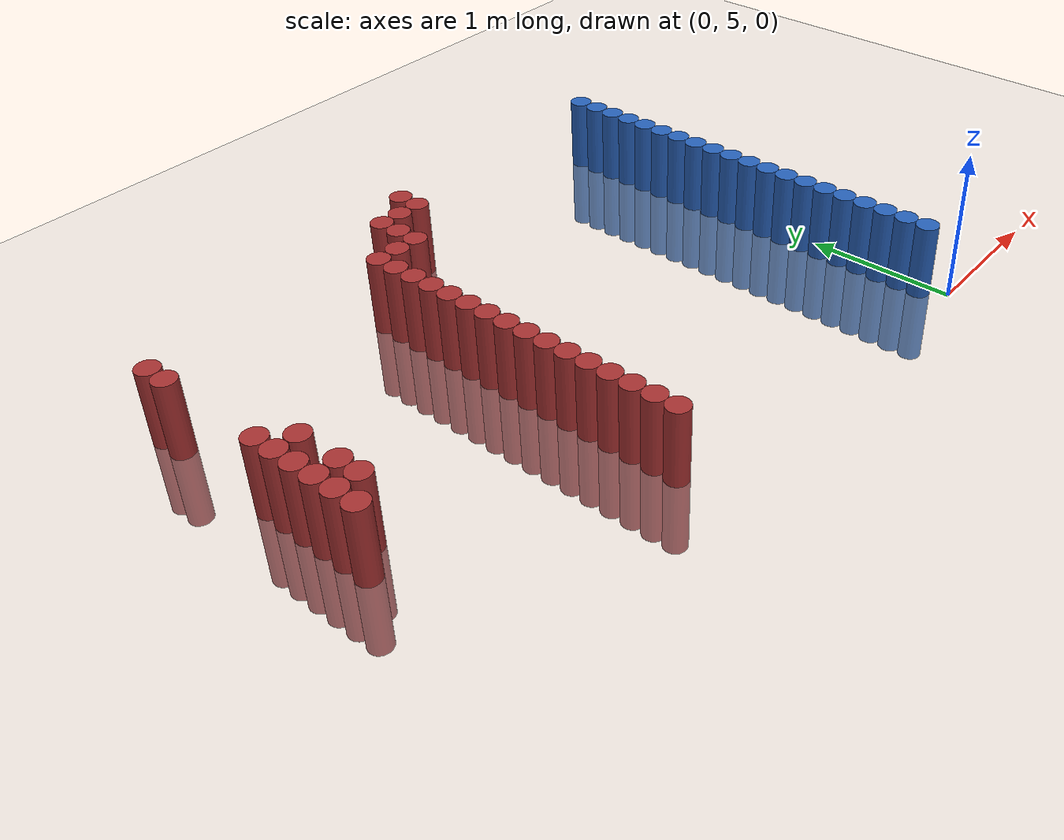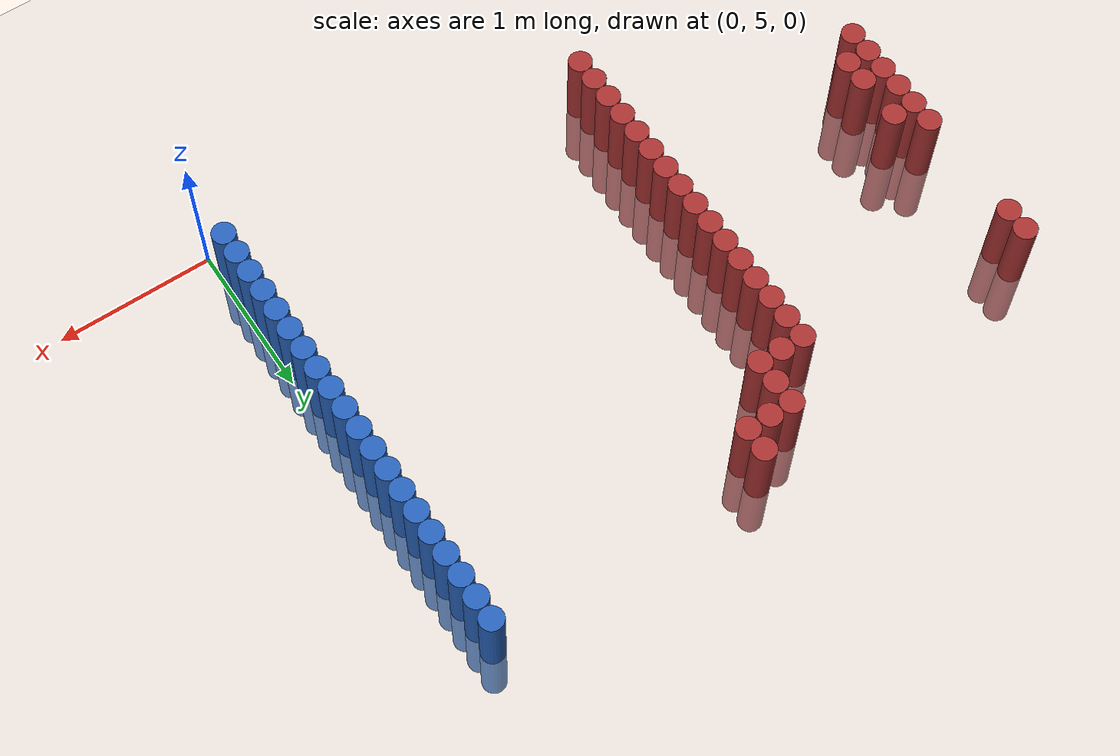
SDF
<sdf version="1.6">
 <world name="default">
  <model name="ground_plane">
   <static>1</static>
   <link name="link">
    <collision name="collision">
     <geometry><plane><normal>0 0 1</normal><size>100 100</size></plane></geometry>
     <surface><friction><ode><mu>100</mu><mu2>50</mu2></ode></friction></surface>
    </collision>
    <visual name="visual">
     <cast_shadows>0</cast_shadows>
     <geometry><plane><normal>0 0 1</normal><size>100 100</size></plane></geometry>
     <material>
      <script><uri>file://media/materials/scripts/gazebo.material</uri><name>Gazebo/Grey</name></script>
     </material>
    </visual>
   </link>
  </model>
  <model name="unit_cylinder_258">
   <static>1</static>
   <pose>-3.975000 6.075000 0.000000 0.000000 0.000000 0.000000</pose>
   <link name="link">
    <inertial>
     <mass>1</mass>
     <inertia><ixx>0.145833</ixx><ixy>0</ixy><ixz>0</ixz><iyy>0.145833</iyy><iyz>0</iyz><izz>0.125</izz></inertia>
    </inertial>
    <collision name="collision">
     <geometry><cylinder><radius>0.075000</radius><length>1</length></cylinder></geometry>
    </collision>
    <visual name="visual">
     <geometry><cylinder><radius>0.075000</radius><length>1</length></cylinder></geometry>
     <material>
      <ambient>0.648000 0.192000 0.192000 1</ambient>
      <diffuse>0.648000 0.192000 0.192000 1</diffuse>
     </material>
     <material>
      <script><name>Gazebo/Grey</name><uri>file://media/materials/scripts/gazebo.material</uri></script>
     </material>
    </visual>
   </link>
  </model>
  <model name="unit_cylinder_259">
   <static>1</static>
   <pose>-3.975000 6.225000 0.000000 0.000000 0.000000 0.000000</pose>
   <link name="link">
    <inertial>
     <mass>1</mass>
     <inertia><ixx>0.145833</ixx><ixy>0</ixy><ixz>0</ixz><iyy>0.145833</iyy><iyz>0</iyz><izz>0.125</izz></inertia>
    </inertial>
    <collision name="collision">
     <geometry><cylinder><radius>0.075000</radius><length>1</length></cylinder></geometry>
    </collision>
    <visual name="visual">
     <geometry><cylinder><radius>0.075000</radius><length>1</length></cylinder></geometry>
     <material>
      <ambient>0.648000 0.192000 0.192000 1</ambient>
      <diffuse>0.648000 0.192000 0.192000 1</diffuse>
     </material>
     <material>
      <script><name>Gazebo/Grey</name><uri>file://media/materials/scripts/gazebo.material</uri></script>
     </material>
    </visual>
   </link>
  </model>
  <model name="unit_cylinder_260">
   <static>1</static>
   <pose>-3.975000 6.375000 0.000000 0.000000 0.000000 0.000000</pose>
   <link name="link">
    <inertial>
     <mass>1</mass>
     <inertia><ixx>0.145833</ixx><ixy>0</ixy><ixz>0</ixz><iyy>0.145833</iyy><iyz>0</iyz><izz>0.125</izz></inertia>
    </inertial>
    <collision name="collision">
     <geometry><cylinder><radius>0.075000</radius><length>1</length></cylinder></geometry>
    </collision>
    <visual name="visual">
     <geometry><cylinder><radius>0.075000</radius><length>1</length></cylinder></geometry>
     <material>
      <ambient>0.648000 0.192000 0.192000 1</ambient>
      <diffuse>0.648000 0.192000 0.192000 1</diffuse>
     </material>
     <material>
      <script><name>Gazebo/Grey</name><uri>file://media/materials/scripts/gazebo.material</uri></script>
     </material>
    </visual>
   </link>
  </model>
  <model name="unit_cylinder_261">
   <static>1</static>
   <pose>-3.975000 6.525000 0.000000 0.000000 0.000000 0.000000</pose>
   <link name="link">
    <inertial>
     <mass>1</mass>
     <inertia><ixx>0.145833</ixx><ixy>0</ixy><ixz>0</ixz><iyy>0.145833</iyy><iyz>0</iyz><izz>0.125</izz></inertia>
    </inertial>
    <collision name="collision">
     <geometry><cylinder><radius>0.075000</radius><length>1</length></cylinder></geometry>
    </collision>
    <visual name="visual">
     <geometry><cylinder><radius>0.075000</radius><length>1</length></cylinder></geometry>
     <material>
      <ambient>0.648000 0.192000 0.192000 1</ambient>
      <diffuse>0.648000 0.192000 0.192000 1</diffuse>
     </material>
     <material>
      <script><name>Gazebo/Grey</name><uri>file://media/materials/scripts/gazebo.material</uri></script>
     </material>
    </visual>
   </link>
  </model>
  <model name="unit_cylinder_262">
   <static>1</static>
   <pose>-3.975000 6.675000 0.000000 0.000000 0.000000 0.000000</pose>
   <link name="link">
    <inertial>
     <mass>1</mass>
     <inertia><ixx>0.145833</ixx><ixy>0</ixy><ixz>0</ixz><iyy>0.145833</iyy><iyz>0</iyz><izz>0.125</izz></inertia>
    </inertial>
    <collision name="collision">
     <geometry><cylinder><radius>0.075000</radius><length>1</length></cylinder></geometry>
    </collision>
    <visual name="visual">
     <geometry><cylinder><radius>0.075000</radius><length>1</length></cylinder></geometry>
     <material>
      <ambient>0.648000 0.192000 0.192000 1</ambient>
      <diffuse>0.648000 0.192000 0.192000 1</diffuse>
     </material>
     <material>
      <script><name>Gazebo/Grey</name><uri>file://media/materials/scripts/gazebo.material</uri></script>
     </material>
    </visual>
   </link>
  </model>
  <model name="unit_cylinder_263">
   <static>1</static>
   <pose>-3.975000 6.825000 0.000000 0.000000 0.000000 0.000000</pose>
   <link name="link">
    <inertial>
     <mass>1</mass>
     <inertia><ixx>0.145833</ixx><ixy>0</ixy><ixz>0</ixz><iyy>0.145833</iyy><iyz>0</iyz><izz>0.125</izz></inertia>
    </inertial>
    <collision name="collision">
     <geometry><cylinder><radius>0.075000</radius><length>1</length></cylinder></geometry>
    </collision>
    <visual name="visual">
     <geometry><cylinder><radius>0.075000</radius><length>1</length></cylinder></geometry>
     <material>
      <ambient>0.648000 0.192000 0.192000 1</ambient>
      <diffuse>0.648000 0.192000 0.192000 1</diffuse>
     </material>
     <material>
      <script><name>Gazebo/Grey</name><uri>file://media/materials/scripts/gazebo.material</uri></script>
     </material>
    </visual>
   </link>
  </model>
  <model name="unit_cylinder_264">
   <static>1</static>
   <pose>-3.975000 7.575000 0.000000 0.000000 0.000000 0.000000</pose>
   <link name="link">
    <inertial>
     <mass>1</mass>
     <inertia><ixx>0.145833</ixx><ixy>0</ixy><ixz>0</ixz><iyy>0.145833</iyy><iyz>0</iyz><izz>0.125</izz></inertia>
    </inertial>
    <collision name="collision">
     <geometry><cylinder><radius>0.075000</radius><length>1</length></cylinder></geometry>
    </collision>
    <visual name="visual">
     <geometry><cylinder><radius>0.075000</radius><length>1</length></cylinder></geometry>
     <material>
      <ambient>0.648000 0.192000 0.192000 1</ambient>
      <diffuse>0.648000 0.192000 0.192000 1</diffuse>
     </material>
     <material>
      <script><name>Gazebo/Grey</name><uri>file://media/materials/scripts/gazebo.material</uri></script>
     </material>
    </visual>
   </link>
  </model>
  <model name="unit_cylinder_265">
   <static>1</static>
   <pose>-3.975000 7.725000 0.000000 0.000000 0.000000 0.000000</pose>
   <link name="link">
    <inertial>
     <mass>1</mass>
     <inertia><ixx>0.145833</ixx><ixy>0</ixy><ixz>0</ixz><iyy>0.145833</iyy><iyz>0</iyz><izz>0.125</izz></inertia>
    </inertial>
    <collision name="collision">
     <geometry><cylinder><radius>0.075000</radius><length>1</length></cylinder></geometry>
    </collision>
    <visual name="visual">
     <geometry><cylinder><radius>0.075000</radius><length>1</length></cylinder></geometry>
     <material>
      <ambient>0.648000 0.192000 0.192000 1</ambient>
      <diffuse>0.648000 0.192000 0.192000 1</diffuse>
     </material>
     <material>
      <script><name>Gazebo/Grey</name><uri>file://media/materials/scripts/gazebo.material</uri></script>
     </material>
    </visual>
   </link>
  </model>
  <model name="unit_cylinder_270">
   <static>1</static>
   <pose>-3.825000 6.225000 0.000000 0.000000 0.000000 0.000000</pose>
   <link name="link">
    <inertial>
     <mass>1</mass>
     <inertia><ixx>0.145833</ixx><ixy>0</ixy><ixz>0</ixz><iyy>0.145833</iyy><iyz>0</iyz><izz>0.125</izz></inertia>
    </inertial>
    <collision name="collision">
     <geometry><cylinder><radius>0.075000</radius><length>1</length></cylinder></geometry>
    </collision>
    <visual name="visual">
     <geometry><cylinder><radius>0.075000</radius><length>1</length></cylinder></geometry>
     <material>
      <ambient>0.648000 0.192000 0.192000 1</ambient>
      <diffuse>0.648000 0.192000 0.192000 1</diffuse>
     </material>
     <material>
      <script><name>Gazebo/Grey</name><uri>file://media/materials/scripts/gazebo.material</uri></script>
     </material>
    </visual>
   </link>
  </model>
  <model name="unit_cylinder_271">
   <static>1</static>
   <pose>-3.825000 6.375000 0.000000 0.000000 0.000000 0.000000</pose>
   <link name="link">
    <inertial>
     <mass>1</mass>
     <inertia><ixx>0.145833</ixx><ixy>0</ixy><ixz>0</ixz><iyy>0.145833</iyy><iyz>0</iyz><izz>0.125</izz></inertia>
    </inertial>
    <collision name="collision">
     <geometry><cylinder><radius>0.075000</radius><length>1</length></cylinder></geometry>
    </collision>
    <visual name="visual">
     <geometry><cylinder><radius>0.075000</radius><length>1</length></cylinder></geometry>
     <material>
      <ambient>0.648000 0.192000 0.192000 1</ambient>
      <diffuse>0.648000 0.192000 0.192000 1</diffuse>
     </material>
     <material>
      <script><name>Gazebo/Grey</name><uri>file://media/materials/scripts/gazebo.material</uri></script>
     </material>
    </visual>
   </link>
  </model>
  <model name="unit_cylinder_272">
   <static>1</static>
   <pose>-3.825000 6.675000 0.000000 0.000000 0.000000 0.000000</pose>
   <link name="link">
    <inertial>
     <mass>1</mass>
     <inertia><ixx>0.145833</ixx><ixy>0</ixy><ixz>0</ixz><iyy>0.145833</iyy><iyz>0</iyz><izz>0.125</izz></inertia>
    </inertial>
    <collision name="collision">
     <geometry><cylinder><radius>0.075000</radius><length>1</length></cylinder></geometry>
    </collision>
    <visual name="visual">
     <geometry><cylinder><radius>0.075000</radius><length>1</length></cylinder></geometry>
     <material>
      <ambient>0.648000 0.192000 0.192000 1</ambient>
      <diffuse>0.648000 0.192000 0.192000 1</diffuse>
     </material>
     <material>
      <script><name>Gazebo/Grey</name><uri>file://media/materials/scripts/gazebo.material</uri></script>
     </material>
    </visual>
   </link>
  </model>
  <model name="unit_cylinder_287">
   <static>1</static>
   <pose>-2.475000 5.325000 0.000000 0.000000 0.000000 0.000000</pose>
   <link name="link">
    <inertial>
     <mass>1</mass>
     <inertia><ixx>0.145833</ixx><ixy>0</ixy><ixz>0</ixz><iyy>0.145833</iyy><iyz>0</iyz><izz>0.125</izz></inertia>
    </inertial>
    <collision name="collision">
     <geometry><cylinder><radius>0.075000</radius><length>1</length></cylinder></geometry>
    </collision>
    <visual name="visual">
     <geometry><cylinder><radius>0.075000</radius><length>1</length></cylinder></geometry>
     <material>
      <ambient>0.648000 0.192000 0.192000 1</ambient>
      <diffuse>0.648000 0.192000 0.192000 1</diffuse>
     </material>
     <material>
      <script><name>Gazebo/Grey</name><uri>file://media/materials/scripts/gazebo.material</uri></script>
     </material>
    </visual>
   </link>
  </model>
  <model name="unit_cylinder_288">
   <static>1</static>
   <pose>-2.475000 5.475000 0.000000 0.000000 0.000000 0.000000</pose>
   <link name="link">
    <inertial>
     <mass>1</mass>
     <inertia><ixx>0.145833</ixx><ixy>0</ixy><ixz>0</ixz><iyy>0.145833</iyy><iyz>0</iyz><izz>0.125</izz></inertia>
    </inertial>
    <collision name="collision">
     <geometry><cylinder><radius>0.075000</radius><length>1</length></cylinder></geometry>
    </collision>
    <visual name="visual">
     <geometry><cylinder><radius>0.075000</radius><length>1</length></cylinder></geometry>
     <material>
      <ambient>0.648000 0.192000 0.192000 1</ambient>
      <diffuse>0.648000 0.192000 0.192000 1</diffuse>
     </material>
     <material>
      <script><name>Gazebo/Grey</name><uri>file://media/materials/scripts/gazebo.material</uri></script>
     </material>
    </visual>
   </link>
  </model>
  <model name="unit_cylinder_289">
   <static>1</static>
   <pose>-2.475000 5.625000 0.000000 0.000000 0.000000 0.000000</pose>
   <link name="link">
    <inertial>
     <mass>1</mass>
     <inertia><ixx>0.145833</ixx><ixy>0</ixy><ixz>0</ixz><iyy>0.145833</iyy><iyz>0</iyz><izz>0.125</izz></inertia>
    </inertial>
    <collision name="collision">
     <geometry><cylinder><radius>0.075000</radius><length>1</length></cylinder></geometry>
    </collision>
    <visual name="visual">
     <geometry><cylinder><radius>0.075000</radius><length>1</length></cylinder></geometry>
     <material>
      <ambient>0.648000 0.192000 0.192000 1</ambient>
      <diffuse>0.648000 0.192000 0.192000 1</diffuse>
     </material>
     <material>
      <script><name>Gazebo/Grey</name><uri>file://media/materials/scripts/gazebo.material</uri></script>
     </material>
    </visual>
   </link>
  </model>
  <model name="unit_cylinder_290">
   <static>1</static>
   <pose>-2.475000 5.775000 0.000000 0.000000 0.000000 0.000000</pose>
   <link name="link">
    <inertial>
     <mass>1</mass>
     <inertia><ixx>0.145833</ixx><ixy>0</ixy><ixz>0</ixz><iyy>0.145833</iyy><iyz>0</iyz><izz>0.125</izz></inertia>
    </inertial>
    <collision name="collision">
     <geometry><cylinder><radius>0.075000</radius><length>1</length></cylinder></geometry>
    </collision>
    <visual name="visual">
     <geometry><cylinder><radius>0.075000</radius><length>1</length></cylinder></geometry>
     <material>
      <ambient>0.648000 0.192000 0.192000 1</ambient>
      <diffuse>0.648000 0.192000 0.192000 1</diffuse>
     </material>
     <material>
      <script><name>Gazebo/Grey</name><uri>file://media/materials/scripts/gazebo.material</uri></script>
     </material>
    </visual>
   </link>
  </model>
  <model name="unit_cylinder_291">
   <static>1</static>
   <pose>-2.475000 5.925000 0.000000 0.000000 0.000000 0.000000</pose>
   <link name="link">
    <inertial>
     <mass>1</mass>
     <inertia><ixx>0.145833</ixx><ixy>0</ixy><ixz>0</ixz><iyy>0.145833</iyy><iyz>0</iyz><izz>0.125</izz></inertia>
    </inertial>
    <collision name="collision">
     <geometry><cylinder><radius>0.075000</radius><length>1</length></cylinder></geometry>
    </collision>
    <visual name="visual">
     <geometry><cylinder><radius>0.075000</radius><length>1</length></cylinder></geometry>
     <material>
      <ambient>0.648000 0.192000 0.192000 1</ambient>
      <diffuse>0.648000 0.192000 0.192000 1</diffuse>
     </material>
     <material>
      <script><name>Gazebo/Grey</name><uri>file://media/materials/scripts/gazebo.material</uri></script>
     </material>
    </visual>
   </link>
  </model>
  <model name="unit_cylinder_292">
   <static>1</static>
   <pose>-2.475000 6.075000 0.000000 0.000000 0.000000 0.000000</pose>
   <link name="link">
    <inertial>
     <mass>1</mass>
     <inertia><ixx>0.145833</ixx><ixy>0</ixy><ixz>0</ixz><iyy>0.145833</iyy><iyz>0</iyz><izz>0.125</izz></inertia>
    </inertial>
    <collision name="collision">
     <geometry><cylinder><radius>0.075000</radius><length>1</length></cylinder></geometry>
    </collision>
    <visual name="visual">
     <geometry><cylinder><radius>0.075000</radius><length>1</length></cylinder></geometry>
     <material>
      <ambient>0.648000 0.192000 0.192000 1</ambient>
      <diffuse>0.648000 0.192000 0.192000 1</diffuse>
     </material>
     <material>
      <script><name>Gazebo/Grey</name><uri>file://media/materials/scripts/gazebo.material</uri></script>
     </material>
    </visual>
   </link>
  </model>
  <model name="unit_cylinder_293">
   <static>1</static>
   <pose>-2.475000 6.225000 0.000000 0.000000 0.000000 0.000000</pose>
   <link name="link">
    <inertial>
     <mass>1</mass>
     <inertia><ixx>0.145833</ixx><ixy>0</ixy><ixz>0</ixz><iyy>0.145833</iyy><iyz>0</iyz><izz>0.125</izz></inertia>
    </inertial>
    <collision name="collision">
     <geometry><cylinder><radius>0.075000</radius><length>1</length></cylinder></geometry>
    </collision>
    <visual name="visual">
     <geometry><cylinder><radius>0.075000</radius><length>1</length></cylinder></geometry>
     <material>
      <ambient>0.648000 0.192000 0.192000 1</ambient>
      <diffuse>0.648000 0.192000 0.192000 1</diffuse>
     </material>
     <material>
      <script><name>Gazebo/Grey</name><uri>file://media/materials/scripts/gazebo.material</uri></script>
     </material>
    </visual>
   </link>
  </model>
  <model name="unit_cylinder_294">
   <static>1</static>
   <pose>-2.475000 6.375000 0.000000 0.000000 0.000000 0.000000</pose>
   <link name="link">
    <inertial>
     <mass>1</mass>
     <inertia><ixx>0.145833</ixx><ixy>0</ixy><ixz>0</ixz><iyy>0.145833</iyy><iyz>0</iyz><izz>0.125</izz></inertia>
    </inertial>
    <collision name="collision">
     <geometry><cylinder><radius>0.075000</radius><length>1</length></cylinder></geometry>
    </collision>
    <visual name="visual">
     <geometry><cylinder><radius>0.075000</radius><length>1</length></cylinder></geometry>
     <material>
      <ambient>0.648000 0.192000 0.192000 1</ambient>
      <diffuse>0.648000 0.192000 0.192000 1</diffuse>
     </material>
     <material>
      <script><name>Gazebo/Grey</name><uri>file://media/materials/scripts/gazebo.material</uri></script>
     </material>
    </visual>
   </link>
  </model>
  <model name="unit_cylinder_295">
   <static>1</static>
   <pose>-2.475000 6.525000 0.000000 0.000000 0.000000 0.000000</pose>
   <link name="link">
    <inertial>
     <mass>1</mass>
     <inertia><ixx>0.145833</ixx><ixy>0</ixy><ixz>0</ixz><iyy>0.145833</iyy><iyz>0</iyz><izz>0.125</izz></inertia>
    </inertial>
    <collision name="collision">
     <geometry><cylinder><radius>0.075000</radius><length>1</length></cylinder></geometry>
    </collision>
    <visual name="visual">
     <geometry><cylinder><radius>0.075000</radius><length>1</length></cylinder></geometry>
     <material>
      <ambient>0.648000 0.192000 0.192000 1</ambient>
      <diffuse>0.648000 0.192000 0.192000 1</diffuse>
     </material>
     <material>
      <script><name>Gazebo/Grey</name><uri>file://media/materials/scripts/gazebo.material</uri></script>
     </material>
    </visual>
   </link>
  </model>
  <model name="unit_cylinder_296">
   <static>1</static>
   <pose>-2.475000 6.675000 0.000000 0.000000 0.000000 0.000000</pose>
   <link name="link">
    <inertial>
     <mass>1</mass>
     <inertia><ixx>0.145833</ixx><ixy>0</ixy><ixz>0</ixz><iyy>0.145833</iyy><iyz>0</iyz><izz>0.125</izz></inertia>
    </inertial>
    <collision name="collision">
     <geometry><cylinder><radius>0.075000</radius><length>1</length></cylinder></geometry>
    </collision>
    <visual name="visual">
     <geometry><cylinder><radius>0.075000</radius><length>1</length></cylinder></geometry>
     <material>
      <ambient>0.648000 0.192000 0.192000 1</ambient>
      <diffuse>0.648000 0.192000 0.192000 1</diffuse>
     </material>
     <material>
      <script><name>Gazebo/Grey</name><uri>file://media/materials/scripts/gazebo.material</uri></script>
     </material>
    </visual>
   </link>
  </model>
  <model name="unit_cylinder_297">
   <static>1</static>
   <pose>-2.475000 6.825000 0.000000 0.000000 0.000000 0.000000</pose>
   <link name="link">
    <inertial>
     <mass>1</mass>
     <inertia><ixx>0.145833</ixx><ixy>0</ixy><ixz>0</ixz><iyy>0.145833</iyy><iyz>0</iyz><izz>0.125</izz></inertia>
    </inertial>
    <collision name="collision">
     <geometry><cylinder><radius>0.075000</radius><length>1</length></cylinder></geometry>
    </collision>
    <visual name="visual">
     <geometry><cylinder><radius>0.075000</radius><length>1</length></cylinder></geometry>
     <material>
      <ambient>0.648000 0.192000 0.192000 1</ambient>
      <diffuse>0.648000 0.192000 0.192000 1</diffuse>
     </material>
     <material>
      <script><name>Gazebo/Grey</name><uri>file://media/materials/scripts/gazebo.material</uri></script>
     </material>
    </visual>
   </link>
  </model>
  <model name="unit_cylinder_298">
   <static>1</static>
   <pose>-2.475000 6.975000 0.000000 0.000000 0.000000 0.000000</pose>
   <link name="link">
    <inertial>
     <mass>1</mass>
     <inertia><ixx>0.145833</ixx><ixy>0</ixy><ixz>0</ixz><iyy>0.145833</iyy><iyz>0</iyz><izz>0.125</izz></inertia>
    </inertial>
    <collision name="collision">
     <geometry><cylinder><radius>0.075000</radius><length>1</length></cylinder></geometry>
    </collision>
    <visual name="visual">
     <geometry><cylinder><radius>0.075000</radius><length>1</length></cylinder></geometry>
     <material>
      <ambient>0.648000 0.192000 0.192000 1</ambient>
      <diffuse>0.648000 0.192000 0.192000 1</diffuse>
     </material>
     <material>
      <script><name>Gazebo/Grey</name><uri>file://media/materials/scripts/gazebo.material</uri></script>
     </material>
    </visual>
   </link>
  </model>
  <model name="unit_cylinder_299">
   <static>1</static>
   <pose>-2.475000 7.125000 0.000000 0.000000 0.000000 0.000000</pose>
   <link name="link">
    <inertial>
     <mass>1</mass>
     <inertia><ixx>0.145833</ixx><ixy>0</ixy><ixz>0</ixz><iyy>0.145833</iyy><iyz>0</iyz><izz>0.125</izz></inertia>
    </inertial>
    <collision name="collision">
     <geometry><cylinder><radius>0.075000</radius><length>1</length></cylinder></geometry>
    </collision>
    <visual name="visual">
     <geometry><cylinder><radius>0.075000</radius><length>1</length></cylinder></geometry>
     <material>
      <ambient>0.648000 0.192000 0.192000 1</ambient>
      <diffuse>0.648000 0.192000 0.192000 1</diffuse>
     </material>
     <material>
      <script><name>Gazebo/Grey</name><uri>file://media/materials/scripts/gazebo.material</uri></script>
     </material>
    </visual>
   </link>
  </model>
  <model name="unit_cylinder_300">
   <static>1</static>
   <pose>-2.475000 7.275000 0.000000 0.000000 0.000000 0.000000</pose>
   <link name="link">
    <inertial>
     <mass>1</mass>
     <inertia><ixx>0.145833</ixx><ixy>0</ixy><ixz>0</ixz><iyy>0.145833</iyy><iyz>0</iyz><izz>0.125</izz></inertia>
    </inertial>
    <collision name="collision">
     <geometry><cylinder><radius>0.075000</radius><length>1</length></cylinder></geometry>
    </collision>
    <visual name="visual">
     <geometry><cylinder><radius>0.075000</radius><length>1</length></cylinder></geometry>
     <material>
      <ambient>0.648000 0.192000 0.192000 1</ambient>
      <diffuse>0.648000 0.192000 0.192000 1</diffuse>
     </material>
     <material>
      <script><name>Gazebo/Grey</name><uri>file://media/materials/scripts/gazebo.material</uri></script>
     </material>
    </visual>
   </link>
  </model>
  <model name="unit_cylinder_301">
   <static>1</static>
   <pose>-2.475000 7.425000 0.000000 0.000000 0.000000 0.000000</pose>
   <link name="link">
    <inertial>
     <mass>1</mass>
     <inertia><ixx>0.145833</ixx><ixy>0</ixy><ixz>0</ixz><iyy>0.145833</iyy><iyz>0</iyz><izz>0.125</izz></inertia>
    </inertial>
    <collision name="collision">
     <geometry><cylinder><radius>0.075000</radius><length>1</length></cylinder></geometry>
    </collision>
    <visual name="visual">
     <geometry><cylinder><radius>0.075000</radius><length>1</length></cylinder></geometry>
     <material>
      <ambient>0.648000 0.192000 0.192000 1</ambient>
      <diffuse>0.648000 0.192000 0.192000 1</diffuse>
     </material>
     <material>
      <script><name>Gazebo/Grey</name><uri>file://media/materials/scripts/gazebo.material</uri></script>
     </material>
    </visual>
   </link>
  </model>
  <model name="unit_cylinder_302">
   <static>1</static>
   <pose>-2.475000 7.575000 0.000000 0.000000 0.000000 0.000000</pose>
   <link name="link">
    <inertial>
     <mass>1</mass>
     <inertia><ixx>0.145833</ixx><ixy>0</ixy><ixz>0</ixz><iyy>0.145833</iyy><iyz>0</iyz><izz>0.125</izz></inertia>
    </inertial>
    <collision name="collision">
     <geometry><cylinder><radius>0.075000</radius><length>1</length></cylinder></geometry>
    </collision>
    <visual name="visual">
     <geometry><cylinder><radius>0.075000</radius><length>1</length></cylinder></geometry>
     <material>
      <ambient>0.648000 0.192000 0.192000 1</ambient>
      <diffuse>0.648000 0.192000 0.192000 1</diffuse>
     </material>
     <material>
      <script><name>Gazebo/Grey</name><uri>file://media/materials/scripts/gazebo.material</uri></script>
     </material>
    </visual>
   </link>
  </model>
  <model name="unit_cylinder_304">
   <static>1</static>
   <pose>-2.325000 7.575000 0.000000 0.000000 0.000000 0.000000</pose>
   <link name="link">
    <inertial>
     <mass>1</mass>
     <inertia><ixx>0.145833</ixx><ixy>0</ixy><ixz>0</ixz><iyy>0.145833</iyy><iyz>0</iyz><izz>0.125</izz></inertia>
    </inertial>
    <collision name="collision">
     <geometry><cylinder><radius>0.075000</radius><length>1</length></cylinder></geometry>
    </collision>
    <visual name="visual">
     <geometry><cylinder><radius>0.075000</radius><length>1</length></cylinder></geometry>
     <material>
      <ambient>0.648000 0.192000 0.192000 1</ambient>
      <diffuse>0.648000 0.192000 0.192000 1</diffuse>
     </material>
     <material>
      <script><name>Gazebo/Grey</name><uri>file://media/materials/scripts/gazebo.material</uri></script>
     </material>
    </visual>
   </link>
  </model>
  <model name="unit_cylinder_306">
   <static>1</static>
   <pose>-2.175000 7.575000 0.000000 0.000000 0.000000 0.000000</pose>
   <link name="link">
    <inertial>
     <mass>1</mass>
     <inertia><ixx>0.145833</ixx><ixy>0</ixy><ixz>0</ixz><iyy>0.145833</iyy><iyz>0</iyz><izz>0.125</izz></inertia>
    </inertial>
    <collision name="collision">
     <geometry><cylinder><radius>0.075000</radius><length>1</length></cylinder></geometry>
    </collision>
    <visual name="visual">
     <geometry><cylinder><radius>0.075000</radius><length>1</length></cylinder></geometry>
     <material>
      <ambient>0.648000 0.192000 0.192000 1</ambient>
      <diffuse>0.648000 0.192000 0.192000 1</diffuse>
     </material>
     <material>
      <script><name>Gazebo/Grey</name><uri>file://media/materials/scripts/gazebo.material</uri></script>
     </material>
    </visual>
   </link>
  </model>
  <model name="unit_cylinder_307">
   <static>1</static>
   <pose>-2.175000 7.725000 0.000000 0.000000 0.000000 0.000000</pose>
   <link name="link">
    <inertial>
     <mass>1</mass>
     <inertia><ixx>0.145833</ixx><ixy>0</ixy><ixz>0</ixz><iyy>0.145833</iyy><iyz>0</iyz><izz>0.125</izz></inertia>
    </inertial>
    <collision name="collision">
     <geometry><cylinder><radius>0.075000</radius><length>1</length></cylinder></geometry>
    </collision>
    <visual name="visual">
     <geometry><cylinder><radius>0.075000</radius><length>1</length></cylinder></geometry>
     <material>
      <ambient>0.648000 0.192000 0.192000 1</ambient>
      <diffuse>0.648000 0.192000 0.192000 1</diffuse>
     </material>
     <material>
      <script><name>Gazebo/Grey</name><uri>file://media/materials/scripts/gazebo.material</uri></script>
     </material>
    </visual>
   </link>
  </model>
  <model name="unit_cylinder_308">
   <static>1</static>
   <pose>-2.175000 7.875000 0.000000 0.000000 0.000000 0.000000</pose>
   <link name="link">
    <inertial>
     <mass>1</mass>
     <inertia><ixx>0.145833</ixx><ixy>0</ixy><ixz>0</ixz><iyy>0.145833</iyy><iyz>0</iyz><izz>0.125</izz></inertia>
    </inertial>
    <collision name="collision">
     <geometry><cylinder><radius>0.075000</radius><length>1</length></cylinder></geometry>
    </collision>
    <visual name="visual">
     <geometry><cylinder><radius>0.075000</radius><length>1</length></cylinder></geometry>
     <material>
      <ambient>0.648000 0.192000 0.192000 1</ambient>
      <diffuse>0.648000 0.192000 0.192000 1</diffuse>
     </material>
     <material>
      <script><name>Gazebo/Grey</name><uri>file://media/materials/scripts/gazebo.material</uri></script>
     </material>
    </visual>
   </link>
  </model>
  <model name="unit_cylinder_310">
   <static>1</static>
   <pose>-2.025000 7.875000 0.000000 0.000000 0.000000 0.000000</pose>
   <link name="link">
    <inertial>
     <mass>1</mass>
     <inertia><ixx>0.145833</ixx><ixy>0</ixy><ixz>0</ixz><iyy>0.145833</iyy><iyz>0</iyz><izz>0.125</izz></inertia>
    </inertial>
    <collision name="collision">
     <geometry><cylinder><radius>0.075000</radius><length>1</length></cylinder></geometry>
    </collision>
    <visual name="visual">
     <geometry><cylinder><radius>0.075000</radius><length>1</length></cylinder></geometry>
     <material>
      <ambient>0.648000 0.192000 0.192000 1</ambient>
      <diffuse>0.648000 0.192000 0.192000 1</diffuse>
     </material>
     <material>
      <script><name>Gazebo/Grey</name><uri>file://media/materials/scripts/gazebo.material</uri></script>
     </material>
    </visual>
   </link>
  </model>
  <model name="unit_cylinder_312">
   <static>1</static>
   <pose>-1.875000 7.875000 0.000000 0.000000 0.000000 0.000000</pose>
   <link name="link">
    <inertial>
     <mass>1</mass>
     <inertia><ixx>0.145833</ixx><ixy>0</ixy><ixz>0</ixz><iyy>0.145833</iyy><iyz>0</iyz><izz>0.125</izz></inertia>
    </inertial>
    <collision name="collision">
     <geometry><cylinder><radius>0.075000</radius><length>1</length></cylinder></geometry>
    </collision>
    <visual name="visual">
     <geometry><cylinder><radius>0.075000</radius><length>1</length></cylinder></geometry>
     <material>
      <ambient>0.648000 0.192000 0.192000 1</ambient>
      <diffuse>0.648000 0.192000 0.192000 1</diffuse>
     </material>
     <material>
      <script><name>Gazebo/Grey</name><uri>file://media/materials/scripts/gazebo.material</uri></script>
     </material>
    </visual>
   </link>
  </model>
  <model name="unit_cylinder_313">
   <static>1</static>
   <pose>-1.875000 8.025000 0.000000 0.000000 0.000000 0.000000</pose>
   <link name="link">
    <inertial>
     <mass>1</mass>
     <inertia><ixx>0.145833</ixx><ixy>0</ixy><ixz>0</ixz><iyy>0.145833</iyy><iyz>0</iyz><izz>0.125</izz></inertia>
    </inertial>
    <collision name="collision">
     <geometry><cylinder><radius>0.075000</radius><length>1</length></cylinder></geometry>
    </collision>
    <visual name="visual">
     <geometry><cylinder><radius>0.075000</radius><length>1</length></cylinder></geometry>
     <material>
      <ambient>0.648000 0.192000 0.192000 1</ambient>
      <diffuse>0.648000 0.192000 0.192000 1</diffuse>
     </material>
     <material>
      <script><name>Gazebo/Grey</name><uri>file://media/materials/scripts/gazebo.material</uri></script>
     </material>
    </visual>
   </link>
  </model>
  <model name="unit_cylinder_346">
   <static>1</static>
   <pose>-0.075000 5.175000 0.000000 0.000000 0.000000 0.000000</pose>
   <link name="link">
    <inertial>
     <mass>1</mass>
     <inertia><ixx>0.145833</ixx><ixy>0</ixy><ixz>0</ixz><iyy>0.145833</iyy><iyz>0</iyz><izz>0.125</izz></inertia>
    </inertial>
    <collision name="collision">
     <geometry><cylinder><radius>0.075000</radius><length>1</length></cylinder></geometry>
    </collision>
    <visual name="visual">
     <geometry><cylinder><radius>0.075000</radius><length>1</length></cylinder></geometry>
     <material>
      <ambient>0.152000 0.379000 0.720000 1</ambient>
      <diffuse>0.152000 0.379000 0.720000 1</diffuse>
     </material>
     <material>
      <script><name>Gazebo/Grey</name><uri>file://media/materials/scripts/gazebo.material</uri></script>
     </material>
    </visual>
   </link>
  </model>
  <model name="unit_cylinder_347">
   <static>1</static>
   <pose>-0.075000 5.325000 0.000000 0.000000 0.000000 0.000000</pose>
   <link name="link">
    <inertial>
     <mass>1</mass>
     <inertia><ixx>0.145833</ixx><ixy>0</ixy><ixz>0</ixz><iyy>0.145833</iyy><iyz>0</iyz><izz>0.125</izz></inertia>
    </inertial>
    <collision name="collision">
     <geometry><cylinder><radius>0.075000</radius><length>1</length></cylinder></geometry>
    </collision>
    <visual name="visual">
     <geometry><cylinder><radius>0.075000</radius><length>1</length></cylinder></geometry>
     <material>
      <ambient>0.152000 0.379000 0.720000 1</ambient>
      <diffuse>0.152000 0.379000 0.720000 1</diffuse>
     </material>
     <material>
      <script><name>Gazebo/Grey</name><uri>file://media/materials/scripts/gazebo.material</uri></script>
     </material>
    </visual>
   </link>
  </model>
  <model name="unit_cylinder_348">
   <static>1</static>
   <pose>-0.075000 5.475000 0.000000 0.000000 0.000000 0.000000</pose>
   <link name="link">
    <inertial>
     <mass>1</mass>
     <inertia><ixx>0.145833</ixx><ixy>0</ixy><ixz>0</ixz><iyy>0.145833</iyy><iyz>0</iyz><izz>0.125</izz></inertia>
    </inertial>
    <collision name="collision">
     <geometry><cylinder><radius>0.075000</radius><length>1</length></cylinder></geometry>
    </collision>
    <visual name="visual">
     <geometry><cylinder><radius>0.075000</radius><length>1</length></cylinder></geometry>
     <material>
      <ambient>0.152000 0.379000 0.720000 1</ambient>
      <diffuse>0.152000 0.379000 0.720000 1</diffuse>
     </material>
     <material>
      <script><name>Gazebo/Grey</name><uri>file://media/materials/scripts/gazebo.material</uri></script>
     </material>
    </visual>
   </link>
  </model>
  <model name="unit_cylinder_349">
   <static>1</static>
   <pose>-0.075000 5.625000 0.000000 0.000000 0.000000 0.000000</pose>
   <link name="link">
    <inertial>
     <mass>1</mass>
     <inertia><ixx>0.145833</ixx><ixy>0</ixy><ixz>0</ixz><iyy>0.145833</iyy><iyz>0</iyz><izz>0.125</izz></inertia>
    </inertial>
    <collision name="collision">
     <geometry><cylinder><radius>0.075000</radius><length>1</length></cylinder></geometry>
    </collision>
    <visual name="visual">
     <geometry><cylinder><radius>0.075000</radius><length>1</length></cylinder></geometry>
     <material>
      <ambient>0.152000 0.379000 0.720000 1</ambient>
      <diffuse>0.152000 0.379000 0.720000 1</diffuse>
     </material>
     <material>
      <script><name>Gazebo/Grey</name><uri>file://media/materials/scripts/gazebo.material</uri></script>
     </material>
    </visual>
   </link>
  </model>
  <model name="unit_cylinder_350">
   <static>1</static>
   <pose>-0.075000 5.775000 0.000000 0.000000 0.000000 0.000000</pose>
   <link name="link">
    <inertial>
     <mass>1</mass>
     <inertia><ixx>0.145833</ixx><ixy>0</ixy><ixz>0</ixz><iyy>0.145833</iyy><iyz>0</iyz><izz>0.125</izz></inertia>
    </inertial>
    <collision name="collision">
     <geometry><cylinder><radius>0.075000</radius><length>1</length></cylinder></geometry>
    </collision>
    <visual name="visual">
     <geometry><cylinder><radius>0.075000</radius><length>1</length></cylinder></geometry>
     <material>
      <ambient>0.152000 0.379000 0.720000 1</ambient>
      <diffuse>0.152000 0.379000 0.720000 1</diffuse>
     </material>
     <material>
      <script><name>Gazebo/Grey</name><uri>file://media/materials/scripts/gazebo.material</uri></script>
     </material>
    </visual>
   </link>
  </model>
  <model name="unit_cylinder_351">
   <static>1</static>
   <pose>-0.075000 5.925000 0.000000 0.000000 0.000000 0.000000</pose>
   <link name="link">
    <inertial>
     <mass>1</mass>
     <inertia><ixx>0.145833</ixx><ixy>0</ixy><ixz>0</ixz><iyy>0.145833</iyy><iyz>0</iyz><izz>0.125</izz></inertia>
    </inertial>
    <collision name="collision">
     <geometry><cylinder><radius>0.075000</radius><length>1</length></cylinder></geometry>
    </collision>
    <visual name="visual">
     <geometry><cylinder><radius>0.075000</radius><length>1</length></cylinder></geometry>
     <material>
      <ambient>0.152000 0.379000 0.720000 1</ambient>
      <diffuse>0.152000 0.379000 0.720000 1</diffuse>
     </material>
     <material>
      <script><name>Gazebo/Grey</name><uri>file://media/materials/scripts/gazebo.material</uri></script>
     </material>
    </visual>
   </link>
  </model>
  <model name="unit_cylinder_352">
   <static>1</static>
   <pose>-0.075000 6.075000 0.000000 0.000000 0.000000 0.000000</pose>
   <link name="link">
    <inertial>
     <mass>1</mass>
     <inertia><ixx>0.145833</ixx><ixy>0</ixy><ixz>0</ixz><iyy>0.145833</iyy><iyz>0</iyz><izz>0.125</izz></inertia>
    </inertial>
    <collision name="collision">
     <geometry><cylinder><radius>0.075000</radius><length>1</length></cylinder></geometry>
    </collision>
    <visual name="visual">
     <geometry><cylinder><radius>0.075000</radius><length>1</length></cylinder></geometry>
     <material>
      <ambient>0.152000 0.379000 0.720000 1</ambient>
      <diffuse>0.152000 0.379000 0.720000 1</diffuse>
     </material>
     <material>
      <script><name>Gazebo/Grey</name><uri>file://media/materials/scripts/gazebo.material</uri></script>
     </material>
    </visual>
   </link>
  </model>
  <model name="unit_cylinder_353">
   <static>1</static>
   <pose>-0.075000 6.225000 0.000000 0.000000 0.000000 0.000000</pose>
   <link name="link">
    <inertial>
     <mass>1</mass>
     <inertia><ixx>0.145833</ixx><ixy>0</ixy><ixz>0</ixz><iyy>0.145833</iyy><iyz>0</iyz><izz>0.125</izz></inertia>
    </inertial>
    <collision name="collision">
     <geometry><cylinder><radius>0.075000</radius><length>1</length></cylinder></geometry>
    </collision>
    <visual name="visual">
     <geometry><cylinder><radius>0.075000</radius><length>1</length></cylinder></geometry>
     <material>
      <ambient>0.152000 0.379000 0.720000 1</ambient>
      <diffuse>0.152000 0.379000 0.720000 1</diffuse>
     </material>
     <material>
      <script><name>Gazebo/Grey</name><uri>file://media/materials/scripts/gazebo.material</uri></script>
     </material>
    </visual>
   </link>
  </model>
  <model name="unit_cylinder_354">
   <static>1</static>
   <pose>-0.075000 6.375000 0.000000 0.000000 0.000000 0.000000</pose>
   <link name="link">
    <inertial>
     <mass>1</mass>
     <inertia><ixx>0.145833</ixx><ixy>0</ixy><ixz>0</ixz><iyy>0.145833</iyy><iyz>0</iyz><izz>0.125</izz></inertia>
    </inertial>
    <collision name="collision">
     <geometry><cylinder><radius>0.075000</radius><length>1</length></cylinder></geometry>
    </collision>
    <visual name="visual">
     <geometry><cylinder><radius>0.075000</radius><length>1</length></cylinder></geometry>
     <material>
      <ambient>0.152000 0.379000 0.720000 1</ambient>
      <diffuse>0.152000 0.379000 0.720000 1</diffuse>
     </material>
     <material>
      <script><name>Gazebo/Grey</name><uri>file://media/materials/scripts/gazebo.material</uri></script>
     </material>
    </visual>
   </link>
  </model>
  <model name="unit_cylinder_355">
   <static>1</static>
   <pose>-0.075000 6.525000 0.000000 0.000000 0.000000 0.000000</pose>
   <link name="link">
    <inertial>
     <mass>1</mass>
     <inertia><ixx>0.145833</ixx><ixy>0</ixy><ixz>0</ixz><iyy>0.145833</iyy><iyz>0</iyz><izz>0.125</izz></inertia>
    </inertial>
    <collision name="collision">
     <geometry><cylinder><radius>0.075000</radius><length>1</length></cylinder></geometry>
    </collision>
    <visual name="visual">
     <geometry><cylinder><radius>0.075000</radius><length>1</length></cylinder></geometry>
     <material>
      <ambient>0.152000 0.379000 0.720000 1</ambient>
      <diffuse>0.152000 0.379000 0.720000 1</diffuse>
     </material>
     <material>
      <script><name>Gazebo/Grey</name><uri>file://media/materials/scripts/gazebo.material</uri></script>
     </material>
    </visual>
   </link>
  </model>
  <model name="unit_cylinder_356">
   <static>1</static>
   <pose>-0.075000 6.675000 0.000000 0.000000 0.000000 0.000000</pose>
   <link name="link">
    <inertial>
     <mass>1</mass>
     <inertia><ixx>0.145833</ixx><ixy>0</ixy><ixz>0</ixz><iyy>0.145833</iyy><iyz>0</iyz><izz>0.125</izz></inertia>
    </inertial>
    <collision name="collision">
     <geometry><cylinder><radius>0.075000</radius><length>1</length></cylinder></geometry>
    </collision>
    <visual name="visual">
     <geometry><cylinder><radius>0.075000</radius><length>1</length></cylinder></geometry>
     <material>
      <ambient>0.152000 0.379000 0.720000 1</ambient>
      <diffuse>0.152000 0.379000 0.720000 1</diffuse>
     </material>
     <material>
      <script><name>Gazebo/Grey</name><uri>file://media/materials/scripts/gazebo.material</uri></script>
     </material>
    </visual>
   </link>
  </model>
  <model name="unit_cylinder_357">
   <static>1</static>
   <pose>-0.075000 6.825000 0.000000 0.000000 0.000000 0.000000</pose>
   <link name="link">
    <inertial>
     <mass>1</mass>
     <inertia><ixx>0.145833</ixx><ixy>0</ixy><ixz>0</ixz><iyy>0.145833</iyy><iyz>0</iyz><izz>0.125</izz></inertia>
    </inertial>
    <collision name="collision">
     <geometry><cylinder><radius>0.075000</radius><length>1</length></cylinder></geometry>
    </collision>
    <visual name="visual">
     <geometry><cylinder><radius>0.075000</radius><length>1</length></cylinder></geometry>
     <material>
      <ambient>0.152000 0.379000 0.720000 1</ambient>
      <diffuse>0.152000 0.379000 0.720000 1</diffuse>
     </material>
     <material>
      <script><name>Gazebo/Grey</name><uri>file://media/materials/scripts/gazebo.material</uri></script>
     </material>
    </visual>
   </link>
  </model>
  <model name="unit_cylinder_358">
   <static>1</static>
   <pose>-0.075000 6.975000 0.000000 0.000000 0.000000 0.000000</pose>
   <link name="link">
    <inertial>
     <mass>1</mass>
     <inertia><ixx>0.145833</ixx><ixy>0</ixy><ixz>0</ixz><iyy>0.145833</iyy><iyz>0</iyz><izz>0.125</izz></inertia>
    </inertial>
    <collision name="collision">
     <geometry><cylinder><radius>0.075000</radius><length>1</length></cylinder></geometry>
    </collision>
    <visual name="visual">
     <geometry><cylinder><radius>0.075000</radius><length>1</length></cylinder></geometry>
     <material>
      <ambient>0.152000 0.379000 0.720000 1</ambient>
      <diffuse>0.152000 0.379000 0.720000 1</diffuse>
     </material>
     <material>
      <script><name>Gazebo/Grey</name><uri>file://media/materials/scripts/gazebo.material</uri></script>
     </material>
    </visual>
   </link>
  </model>
  <model name="unit_cylinder_359">
   <static>1</static>
   <pose>-0.075000 7.125000 0.000000 0.000000 0.000000 0.000000</pose>
   <link name="link">
    <inertial>
     <mass>1</mass>
     <inertia><ixx>0.145833</ixx><ixy>0</ixy><ixz>0</ixz><iyy>0.145833</iyy><iyz>0</iyz><izz>0.125</izz></inertia>
    </inertial>
    <collision name="collision">
     <geometry><cylinder><radius>0.075000</radius><length>1</length></cylinder></geometry>
    </collision>
    <visual name="visual">
     <geometry><cylinder><radius>0.075000</radius><length>1</length></cylinder></geometry>
     <material>
      <ambient>0.152000 0.379000 0.720000 1</ambient>
      <diffuse>0.152000 0.379000 0.720000 1</diffuse>
     </material>
     <material>
      <script><name>Gazebo/Grey</name><uri>file://media/materials/scripts/gazebo.material</uri></script>
     </material>
    </visual>
   </link>
  </model>
  <model name="unit_cylinder_360">
   <static>1</static>
   <pose>-0.075000 7.275000 0.000000 0.000000 0.000000 0.000000</pose>
   <link name="link">
    <inertial>
     <mass>1</mass>
     <inertia><ixx>0.145833</ixx><ixy>0</ixy><ixz>0</ixz><iyy>0.145833</iyy><iyz>0</iyz><izz>0.125</izz></inertia>
    </inertial>
    <collision name="collision">
     <geometry><cylinder><radius>0.075000</radius><length>1</length></cylinder></geometry>
    </collision>
    <visual name="visual">
     <geometry><cylinder><radius>0.075000</radius><length>1</length></cylinder></geometry>
     <material>
      <ambient>0.152000 0.379000 0.720000 1</ambient>
      <diffuse>0.152000 0.379000 0.720000 1</diffuse>
     </material>
     <material>
      <script><name>Gazebo/Grey</name><uri>file://media/materials/scripts/gazebo.material</uri></script>
     </material>
    </visual>
   </link>
  </model>
  <model name="unit_cylinder_361">
   <static>1</static>
   <pose>-0.075000 7.425000 0.000000 0.000000 0.000000 0.000000</pose>
   <link name="link">
    <inertial>
     <mass>1</mass>
     <inertia><ixx>0.145833</ixx><ixy>0</ixy><ixz>0</ixz><iyy>0.145833</iyy><iyz>0</iyz><izz>0.125</izz></inertia>
    </inertial>
    <collision name="collision">
     <geometry><cylinder><radius>0.075000</radius><length>1</length></cylinder></geometry>
    </collision>
    <visual name="visual">
     <geometry><cylinder><radius>0.075000</radius><length>1</length></cylinder></geometry>
     <material>
      <ambient>0.152000 0.379000 0.720000 1</ambient>
      <diffuse>0.152000 0.379000 0.720000 1</diffuse>
     </material>
     <material>
      <script><name>Gazebo/Grey</name><uri>file://media/materials/scripts/gazebo.material</uri></script>
     </material>
    </visual>
   </link>
  </model>
  <model name="unit_cylinder_362">
   <static>1</static>
   <pose>-0.075000 7.575000 0.000000 0.000000 0.000000 0.000000</pose>
   <link name="link">
    <inertial>
     <mass>1</mass>
     <inertia><ixx>0.145833</ixx><ixy>0</ixy><ixz>0</ixz><iyy>0.145833</iyy><iyz>0</iyz><izz>0.125</izz></inertia>
    </inertial>
    <collision name="collision">
     <geometry><cylinder><radius>0.075000</radius><length>1</length></cylinder></geometry>
    </collision>
    <visual name="visual">
     <geometry><cylinder><radius>0.075000</radius><length>1</length></cylinder></geometry>
     <material>
      <ambient>0.152000 0.379000 0.720000 1</ambient>
      <diffuse>0.152000 0.379000 0.720000 1</diffuse>
     </material>
     <material>
      <script><name>Gazebo/Grey</name><uri>file://media/materials/scripts/gazebo.material</uri></script>
     </material>
    </visual>
   </link>
  </model>
  <model name="unit_cylinder_363">
   <static>1</static>
   <pose>-0.075000 7.725000 0.000000 0.000000 0.000000 0.000000</pose>
   <link name="link">
    <inertial>
     <mass>1</mass>
     <inertia><ixx>0.145833</ixx><ixy>0</ixy><ixz>0</ixz><iyy>0.145833</iyy><iyz>0</iyz><izz>0.125</izz></inertia>
    </inertial>
    <collision name="collision">
     <geometry><cylinder><radius>0.075000</radius><length>1</length></cylinder></geometry>
    </collision>
    <visual name="visual">
     <geometry><cylinder><radius>0.075000</radius><length>1</length></cylinder></geometry>
     <material>
      <ambient>0.152000 0.379000 0.720000 1</ambient>
      <diffuse>0.152000 0.379000 0.720000 1</diffuse>
     </material>
     <material>
      <script><name>Gazebo/Grey</name><uri>file://media/materials/scripts/gazebo.material</uri></script>
     </material>
    </visual>
   </link>
  </model>
  <model name="unit_cylinder_364">
   <static>1</static>
   <pose>-0.075000 7.875000 0.000000 0.000000 0.000000 0.000000</pose>
   <link name="link">
    <inertial>
     <mass>1</mass>
     <inertia><ixx>0.145833</ixx><ixy>0</ixy><ixz>0</ixz><iyy>0.145833</iyy><iyz>0</iyz><izz>0.125</izz></inertia>
    </inertial>
    <collision name="collision">
     <geometry><cylinder><radius>0.075000</radius><length>1</length></cylinder></geometry>
    </collision>
    <visual name="visual">
     <geometry><cylinder><radius>0.075000</radius><length>1</length></cylinder></geometry>
     <material>
      <ambient>0.152000 0.379000 0.720000 1</ambient>
      <diffuse>0.152000 0.379000 0.720000 1</diffuse>
     </material>
     <material>
      <script><name>Gazebo/Grey</name><uri>file://media/materials/scripts/gazebo.material</uri></script>
     </material>
    </visual>
   </link>
  </model>
  <model name="unit_cylinder_365">
   <static>1</static>
   <pose>-0.075000 8.025000 0.000000 0.000000 0.000000 0.000000</pose>
   <link name="link">
    <inertial>
     <mass>1</mass>
     <inertia><ixx>0.145833</ixx><ixy>0</ixy><ixz>0</ixz><iyy>0.145833</iyy><iyz>0</iyz><izz>0.125</izz></inertia>
    </inertial>
    <collision name="collision">
     <geometry><cylinder><radius>0.075000</radius><length>1</length></cylinder></geometry>
    </collision>
    <visual name="visual">
     <geometry><cylinder><radius>0.075000</radius><length>1</length></cylinder></geometry>
     <material>
      <ambient>0.152000 0.379000 0.720000 1</ambient>
      <diffuse>0.152000 0.379000 0.720000 1</diffuse>
     </material>
     <material>
      <script><name>Gazebo/Grey</name><uri>file://media/materials/scripts/gazebo.material</uri></script>
     </material>
    </visual>
   </link>
  </model>
 </world>
</sdf>
